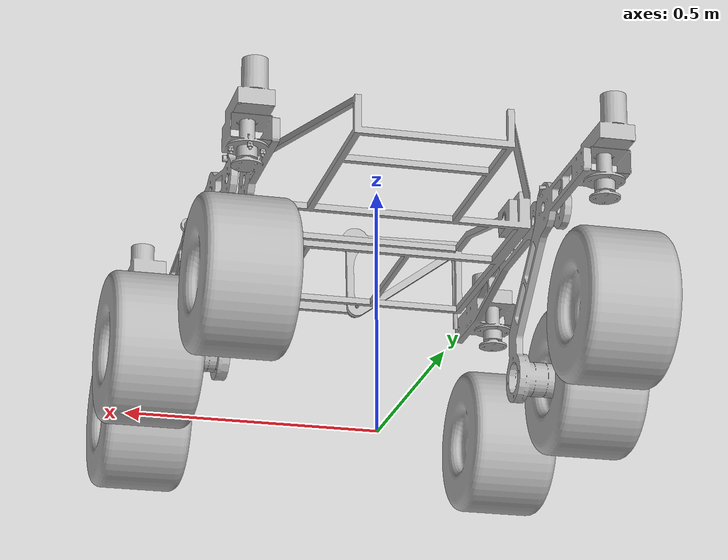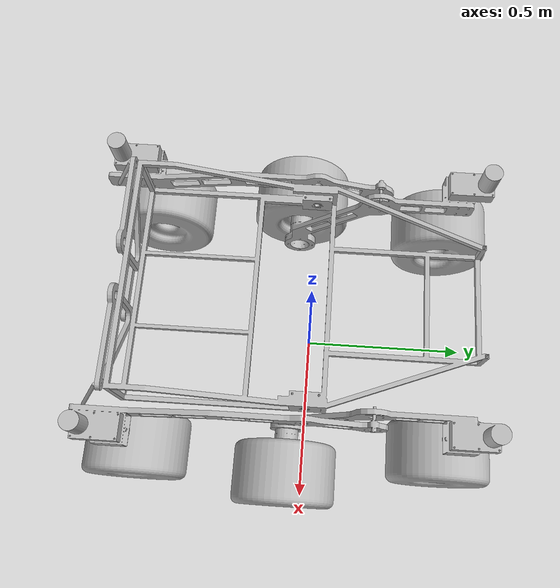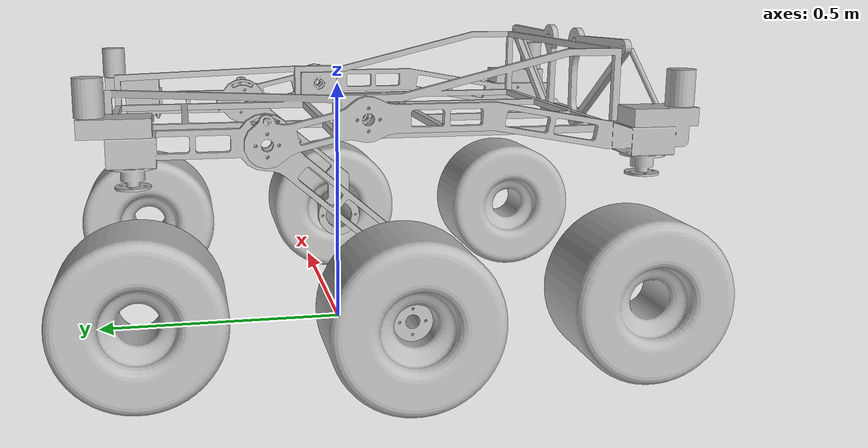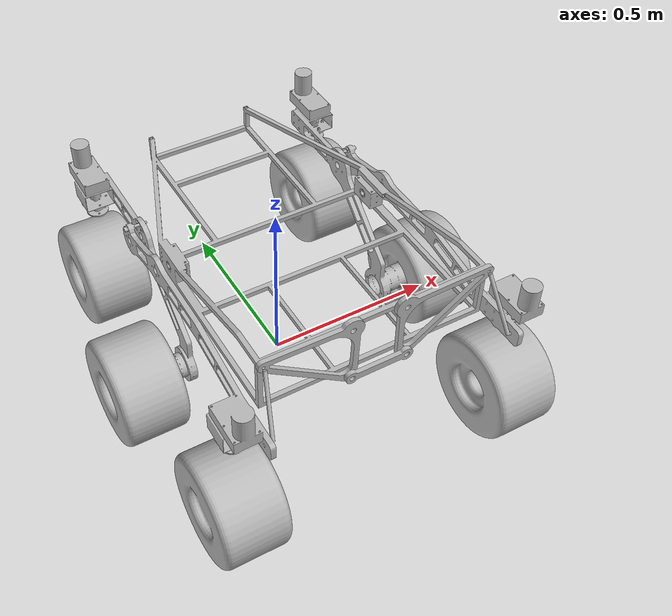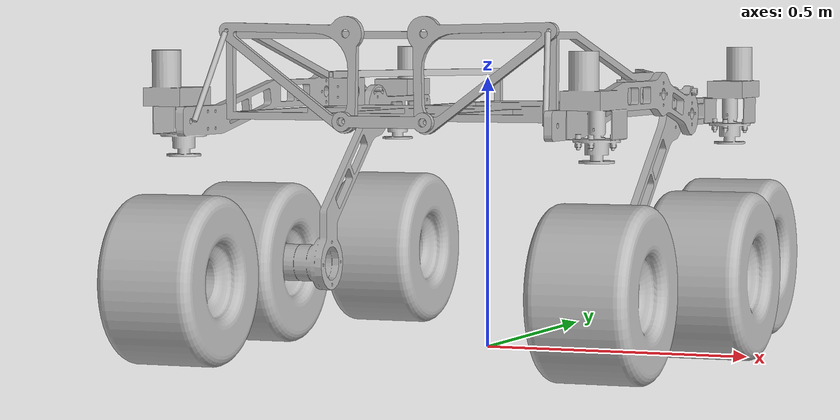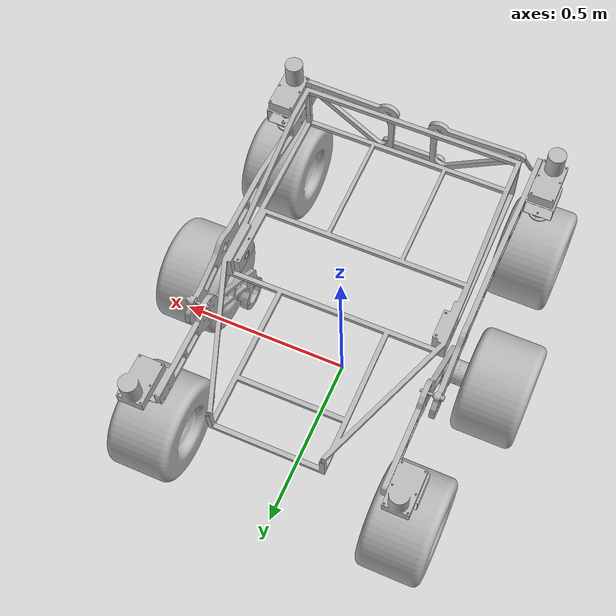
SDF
<?xml version='1.0'?>
<sdf version='1.4'>
<model name="MSI Rover">
  <static>0</static>

<!---------------------------      Chassis Assembly Begins       --------------------------->

  <link name='Chassis'>
    <self_collide>0</self_collide>
    <pose>0.0000 0.0000 0.4720 0.0000 0.0000 0.0000</pose>
    <collision name='Chassis_Collision'>
      <pose>0.0000 -0.0120 0.0380 0.0000 0.0000 0.0000</pose>
      <geometry>
        <box>
          <size>0.6100 0.9300 0.1527</size>
        </box>
      </geometry>
<!------------ TODO ------------>
    </collision>
    <visual name='Chassis_Visual'>
      <geometry>
        <mesh>
          <scale>0.0010 0.0010 0.0010</scale>
          <uri>model://msi_rover/meshes/Chassis.STL</uri>
        </mesh>
      </geometry>
<!------------ TODO ------------>
    </visual>
    <inertial>
      <mass>7.259</mass>                                       <!-- Volume = 0.000902 m^3 -->
      <pose>0.0000 -0.0560 0.0013 0.0000 0.0000 0.0000</pose>
      <inertia>
        <ixx> 0.54570278912</ixx>
        <ixy>-0.00003168874</ixy>
        <ixz>-0.00000141851</ixz>
        <iyy> 0.55866375000</iyy>
        <iyz> 0.02659627264</iyz>
        <izz> 1.07370025000</izz>
      </inertia>
    </inertial>
    <sensor name='laser' type='ray'>
      <pose>0 0 -0.3 0 -0 0</pose>
      <ray>
        <scan>
          <horizontal>
            <samples>72</samples>
            <resolution>1</resolution>
            <min_angle>-3.14159265359</min_angle>
            <max_angle>3.14159265359</max_angle>
          </horizontal>
        </scan>
        <range>
          <min>0.8</min>
          <max>10</max>
          <resolution>0.01</resolution>
        </range>
      </ray>
      <plugin name='laser' filename='libRayPlugin.so'/>
      <always_on>1</always_on>
      <update_rate>30</update_rate>
      <visualize>0</visualize>
    </sensor>
  </link>

<!---------------------------       Chassis Assembly Ends        --------------------------->
<!--------------------------- Left Rocker-Bogie Assembly Begins  --------------------------->

  <link name='Left_Rocker'>
    <self_collide>0</self_collide>
    <pose>-0.3270 0.0000 0.4720 0.0000 0.0000 0.0000</pose>
<!------------ TODO ------------>
    <visual name='Left_Rocker_Visual'>
      <geometry>
        <mesh>
          <scale>0.0010 0.0010 0.0010</scale>
          <uri>model://msi_rover/meshes/Rocker_L.STL</uri>
        </mesh>
      </geometry>
<!------------ TODO ------------>
    </visual>
    <inertial>
      <mass>7.704</mass>                                       <!-- Volume = 0.000957 m^3 -->
      <pose>-0.0315 -0.3536 -0.0096 0.0000 0.0000 0.0000</pose>
      <inertia>
        <ixx> 0.60764512256</ixx>
        <ixy>-0.03926894848</ixy>
        <ixz> 0.00231192640</ixz>
        <iyy> 0.01925778048</iyy>
        <iyz> 0.01388497024</iyz>
        <izz> 0.60239790080</izz>
      </inertia>
    </inertial>
  </link>

  <link name='Left_Bogie'>
    <self_collide>0</self_collide>
    <pose>-0.2940 0.1750 0.4320 0.0000 0.0000 0.0000</pose>
<!------------ TODO ------------>
    <visual name='Left_Bogie_Visual'>
      <geometry>
        <mesh>
          <scale>0.0010 0.0010 0.0010</scale>
          <uri>model://msi_rover/meshes/Bogie_L.STL</uri>
        </mesh>
      </geometry>
<!------------ TODO ------------>
    </visual>
    <inertial>
      <mass>8.493</mass>                                       <!-- Volume = 0.001055 m^3 -->
      <pose>-0.0418 0.0698 -0.0580 0.0000 0.0000 0.0000</pose>
      <inertia>
        <ixx> 0.65631109120</ixx>
        <ixy> 0.00444596320</ixy>
        <ixz>-0.00654497920</ixz>
        <iyy> 0.20716726272</iyy>
        <iyz>-0.27300364288</iyz>
        <izz> 0.48130539520</izz>
      </inertia>
    </inertial>
  </link>

  <link name='Left_Rear_Steering'>
    <self_collide>0</self_collide>
    <pose>-0.3810 -0.4900 0.36800 0.0000 0.0000 0.0000</pose>
<!------------ TODO ------------>
    <inertial>
      <mass>3.34075</mass>                                     <!-- Volume = 0.000415 m^3 -->
      <pose>0.0780 0.0000 -0.1480 0.0000 0.0000 0.0000</pose>
      <inertia>
        <ixx> 0.03486317824</ixx>
        <ixy>-0.00000003196</ixy>
        <ixz> 0.00472688032</ixz>
        <iyy> 0.04927550976</iyy>
        <iyz> 0.00000007500</iyz>
        <izz> 0.02074642688</izz>
      </inertia>
    </inertial>
  </link>

  <link name='Left_Front_Steering'>
    <self_collide>0</self_collide>
    <pose>-0.3480 0.4000 0.3680 0.0000 0.0000 0.0000</pose>
    <inertial>
      <mass>3.34075</mass>                                     <!-- Volume = 0.000415 m^3 -->
      <pose>0.0780 0.0000 -0.1480 0.0000 0.0000 0.0000</pose>
      <inertia>
        <ixx> 0.03486317824</ixx>
        <ixy>-0.00000003196</ixy>
        <ixz> 0.00472688032</ixz>
        <iyy> 0.04927550976</iyy>
        <iyz> 0.00000007500</iyz>
        <izz> 0.02074642688</izz>
      </inertia>
    </inertial>
  </link>

  <link name='Left_Rear_Tyre'>
    <self_collide>0</self_collide>
    <pose>-0.3910 -0.4900 0.1500 0.0000 0.0000 0.0000</pose>
    <collision name='Left_Rear_Tyre_Collision'>
      <pose>0.0000 0.0000 0.0000 0.0000 1.5708 0.0000</pose>
      <geometry>
        <cylinder>
          <radius>0.150</radius>
          <length>0.180</length>
        </cylinder>
      </geometry>
<!------------ TODO ------------>
    </collision>
    <visual name='Left_Rear_Tyre_Visual'>
      <geometry>
        <mesh>
          <scale>0.0010 0.0010 0.0010</scale>
          <uri>model://msi_rover/meshes/Tyre.STL</uri>
        </mesh>
      </geometry>
<!------------ TODO ------------>
    </visual>
    <inertial>
      <mass>1.8000</mass>                                      <!-- Volume = 0.011174 m^3 -->
      <pose>0.0000 0.0000 0.0000 0.0000 0.0000 0.0000</pose>
      <inertia>
        <ixx> 1.36747859968</ixx>
        <ixy> 0.00000017629</ixy>
        <ixz> 0.00000074685</ixz>
        <iyy> 0.95944794112</iyy>
        <iyz> 0.00000067468</iyz>
        <izz> 0.95944794112</izz>
      </inertia>
    </inertial>
  </link>

  <link name='Left_Middle_Tyre'>
    <self_collide>0</self_collide>
    <pose>-0.4480 -0.0500 0.1500 0.0000 0.0000 0.0000</pose>
    <collision name='Left_Middle_Tyre_Collision'>
      <pose>0.0000 0.0000 0.0000 0.0000 1.5708 0.0000</pose>
      <geometry>
        <cylinder>
          <radius>0.150</radius>
          <length>0.180</length>
        </cylinder>
      </geometry>
<!------------ TODO ------------>
    </collision>
    <visual name='Left_Middle_Tyre_Visual'>
      <geometry>
        <mesh>
          <scale>0.0010 0.0010 0.0010</scale>
          <uri>model://msi_rover/meshes/Tyre.STL</uri>
        </mesh>
      </geometry>
<!------------ TODO ------------>
    </visual>
    <inertial>
      <mass>1.8000</mass>                                      <!-- Volume = 0.011174 m^3 -->
      <pose>0.0000 0.0000 0.0000 0.0000 0.0000 0.0000</pose>
      <inertia>
        <ixx> 1.36747859968</ixx>
        <ixy> 0.00000017629</ixy>
        <ixz> 0.00000074685</ixz>
        <iyy> 0.95944794112</iyy>
        <iyz> 0.00000067468</iyz>
        <izz> 0.95944794112</izz>
      </inertia>
    </inertial>
  </link>

  <link name='Left_Front_Tyre'>
    <self_collide>0</self_collide>
    <pose>-0.3580 0.4000 0.1500 0.0000 0.0000 0.0000</pose>
    <collision name='Left_Front_Tyre_Collision'>
      <pose>0.0000 0.0000 0.0000 0.0000 1.5708 0.0000</pose>
      <geometry>
        <cylinder>
          <radius>0.150</radius>
          <length>0.180</length>
        </cylinder>
      </geometry>
<!------------ TODO ------------>
    </collision>
    <visual name='Left_Front_Tyre_Visual'>
      <geometry>
        <mesh>
          <scale>0.0010 0.0010 0.0010</scale>
          <uri>model://msi_rover/meshes/Tyre.STL</uri>
        </mesh>
      </geometry>
<!------------ TODO ------------>
    </visual>
    <inertial>
      <mass>1.8000</mass>                                      <!-- Volume = 0.011174 m^3 -->
      <pose>0.0000 0.0000 0.0000 0.0000 0.0000 0.0000</pose>
      <inertia>
        <ixx> 1.36747859968</ixx>
        <ixy> 0.00000017629</ixy>
        <ixz> 0.00000074685</ixz>
        <iyy> 0.95944794112</iyy>
        <iyz> 0.00000067468</iyz>
        <izz> 0.95944794112</izz>
      </inertia>
    </inertial>
  </link>

<!---------------------------         Joints Subsection          --------------------------->

  <joint type="revolute" name="Left_Rocker_Joint">
    <pose>0.0000 0.0000 0.0000 0.0000 0.0000 0.0000</pose>
    <child>Left_Rocker</child>
    <parent>Chassis</parent>
    <axis>
      <xyz>1 0 0</xyz>
<!------------ TODO ------------>
    </axis>
<!------------ TODO ------------>
  </joint>

  <joint type="revolute" name="Left_Bogie_Joint">
    <pose>0.0000 0.0000 0.0000 0.0000 0.0000 0.0000</pose>
    <child>Left_Bogie</child>
    <parent>Left_Rocker</parent>
    <axis>
      <xyz>1 0 0</xyz>
      <limit>
        <lower>-0.7</lower>
        <upper>0.7</upper>
      </limit>
<!------------ TODO ------------>
    </axis>
<!------------ TODO ------------>
  </joint>

  <joint type="revolute" name="Left_Rear_Steering_Joint">
    <pose>0.0000 0.0000 0.0000 0.0000 0.0000 0.0000</pose>
    <child>Left_Rear_Steering</child>
    <parent>Left_Rocker</parent>
    <axis>
      <xyz>0 0 -1</xyz>
<!------------ TODO ------------>
      <limit>
        <lower>0</lower>
        <upper>0</upper>
      </limit>
<!------------ TODO ------------>
    </axis>
<!------------ TODO ------------>
  </joint>

  <joint type="revolute" name="Left_Front_Steering_Joint">
    <pose>0.0000 0.0000 0.0000 0.0000 0.0000 0.0000</pose>
    <child>Left_Front_Steering</child>
    <parent>Left_Bogie</parent>
    <axis>
      <xyz>0 0 -1</xyz>
<!------------ TODO ------------>
      <limit>
        <lower>0</lower>
        <upper>0</upper>
      </limit>
<!------------ TODO ------------>
    </axis>
<!------------ TODO ------------>
  </joint>

  <joint type="revolute" name="Left_Rear_Tyre_Joint">
    <pose>0.0000 0.0000 0.0000 0.0000 0.0000 0.0000</pose>
    <child>Left_Rear_Tyre</child>
    <parent>Left_Rear_Steering</parent>
    <axis>
      <xyz>1 0 0</xyz>
<!------------ TODO ------------>
    </axis>
<!------------ TODO ------------>
  </joint>

  <joint type="revolute" name="Left_Middle_Tyre_Joint">
    <pose>0.0000 0.0000 0.0000 0.0000 0.0000 0.0000</pose>
    <child>Left_Middle_Tyre</child>
    <parent>Left_Bogie</parent>
    <axis>
      <xyz>1 0 0</xyz>
<!------------ TODO ------------>
    </axis>
<!------------ TODO ------------>
  </joint>

  <joint type="revolute" name="Left_Front_Tyre_Joint">
    <pose>0.0000 0.0000 0.0000 0.0000 0.0000 0.0000</pose>
    <child>Left_Front_Tyre</child>
    <parent>Left_Front_Steering</parent>
    <axis>
      <xyz>1 0 0</xyz>
<!------------ TODO ------------>
    </axis>
<!------------ TODO ------------>
  </joint>

<!---------------------------  Left Rocker-Bogie Assembly Ends   --------------------------->
<!--------------------------- Right Rocker-Bogie Assembly Begins --------------------------->

  <link name='Right_Rocker'>
    <self_collide>0</self_collide>
    <pose>0.3270 0.0000 0.4720 0.0000 0.0000 0.0000</pose>
<!------------ TODO ------------>
    <visual name='Right_Rocker_Visual'>
      <geometry>
        <mesh>
          <scale>0.0010 0.0010 0.0010</scale>
          <uri>model://msi_rover/meshes/Rocker_R.STL</uri>
        </mesh>
      </geometry>
<!------------ TODO ------------>
    </visual>
    <inertial>
      <mass>7.704</mass>                                       <!-- Volume = 0.000957 m^3 -->
      <pose>0.0315 -0.3536 -0.0096 0.0000 0.0000 0.0000</pose>
      <inertia>
        <ixx> 0.60764512256</ixx>
        <ixy> 0.03926894848</ixy>
        <ixz>-0.00231192640</ixz>
        <iyy> 0.01925778048</iyy>
        <iyz> 0.01388497024</iyz>
        <izz> 0.60239790080</izz>
      </inertia>
    </inertial>
  </link>

  <link name='Right_Bogie'>
    <self_collide>0</self_collide>
    <pose>0.2940 0.1750 0.4320 0.0000 0.0000 0.0000</pose>
<!------------ TODO ------------>
    <visual name='Right_Bogie_Visual'>
      <geometry>
        <mesh>
          <scale>0.0010 0.0010 0.0010</scale>
          <uri>model://msi_rover/meshes/Bogie_R.STL</uri>
        </mesh>
      </geometry>
<!------------ TODO ------------>
    </visual>
    <inertial>
      <mass>8.493</mass>                                       <!-- Volume = 0.001055 m^3 -->
      <pose>0.0418 0.0698 -0.0580 0.0000 0.0000 0.0000</pose>
      <inertia>
        <ixx> 0.65631109120</ixx>
        <ixy>-0.00444596320</ixy>
        <ixz> 0.00654497920</ixz>
        <iyy> 0.20716726272</iyy>
        <iyz>-0.27300364288</iyz>
        <izz> 0.48130539520</izz>
      </inertia>
    </inertial>
  </link>

  <link name='Right_Rear_Steering'>
    <self_collide>0</self_collide>
    <pose>0.3810 -0.4900 0.3680 0.0000 0.0000 0.0000</pose>
    <inertial>
      <mass>3.34075</mass>                                     <!-- Volume = 0.000415 m^3 -->
      <pose>-0.0780 0.0000 -0.1480 0.0000 0.0000 0.0000</pose>
      <inertia>
        <ixx> 0.03486317824</ixx>
        <ixy>-0.00000003196</ixy>
        <ixz>-0.00472688032</ixz>
        <iyy> 0.04927550976</iyy>
        <iyz>-0.00000007500</iyz>
        <izz> 0.02074642688</izz>
      </inertia>
    </inertial>
  </link>

  <link name='Right_Front_Steering'>
    <self_collide>0</self_collide>
    <pose>0.3480 0.4000 0.3680 0.0000 0.0000 0.0000</pose>
<!------------ TODO ------------>
<!------------ TODO ------------>
    <inertial>
      <mass>3.34075</mass>                                     <!-- Volume = 0.000415 m^3 -->
      <pose>-0.0780 0.0000 -0.1480 0.0000 0.0000 0.0000</pose>
      <inertia>
        <ixx> 0.03486317824</ixx>
        <ixy>-0.00000003196</ixy>
        <ixz>-0.00472688032</ixz>
        <iyy> 0.04927550976</iyy>
        <iyz>-0.00000007500</iyz>
        <izz> 0.02074642688</izz>
      </inertia>
    </inertial>
  </link>

  <link name='Right_Rear_Tyre'>
    <self_collide>0</self_collide>
    <pose>0.3910 -0.4900 0.1500 0.0000 0.0000 0.0000</pose>
    <collision name='Right_Rear_Tyre_Collision'>
      <pose>0.0000 0.0000 0.0000 0.0000 1.5708 0.0000</pose>
      <geometry>
        <cylinder>
          <radius>0.150</radius>
          <length>0.180</length>
        </cylinder>
      </geometry>
<!------------ TODO ------------>
    </collision>
    <visual name='Right_Rear_Tyre_Visual'>
      <geometry>
        <mesh>
          <scale>0.0010 0.0010 0.0010</scale>
          <uri>model://msi_rover/meshes/Tyre.STL</uri>
        </mesh>
      </geometry>
<!------------ TODO ------------>
    </visual>
    <inertial>
      <mass>1.8000</mass>                                      <!-- Volume = 0.011174 m^3 -->
      <pose>0.0000 0.0000 0.0000 0.0000 0.0000 0.0000</pose>
      <inertia>
        <ixx> 1.36747859968</ixx>
        <ixy> 0.00000017629</ixy>
        <ixz> 0.00000074685</ixz>
        <iyy> 0.95944794112</iyy>
        <iyz> 0.00000067468</iyz>
        <izz> 0.95944794112</izz>
      </inertia>
    </inertial>
  </link>

  <link name='Right_Middle_Tyre'>
    <self_collide>0</self_collide>
    <pose>0.4480 -0.0500 0.1500 0.0000 0.0000 0.0000</pose>
    <collision name='Right_Middle_Tyre_Collision'>
      <pose>0.0000 0.0000 0.0000 0.0000 1.5708 0.0000</pose>
      <geometry>
        <cylinder>
          <radius>0.150</radius>
          <length>0.180</length>
        </cylinder>
      </geometry>
<!------------ TODO ------------>
    </collision>
    <visual name='Right_Middle_Tyre_Visual'>
      <geometry>
        <mesh>
          <scale>0.0010 0.0010 0.0010</scale>
          <uri>model://msi_rover/meshes/Tyre.STL</uri>
        </mesh>
      </geometry>
<!------------ TODO ------------>
    </visual>
    <inertial>
      <mass>1.8000</mass>                                      <!-- Volume = 0.011174 m^3 -->
      <pose>0.0000 0.0000 0.0000 0.0000 0.0000 0.0000</pose>
      <inertia>
        <ixx> 1.36747859968</ixx>
        <ixy> 0.00000017629</ixy>
        <ixz> 0.00000074685</ixz>
        <iyy> 0.95944794112</iyy>
        <iyz> 0.00000067468</iyz>
        <izz> 0.95944794112</izz>
      </inertia>
    </inertial>
  </link>

  <link name='Right_Front_Tyre'>
    <self_collide>0</self_collide>
    <pose>0.3580 0.4000 0.1500 0.0000 0.0000 0.0000</pose>
    <collision name='Right_Front_Tyre_Collision'>
      <pose>0.0000 0.0000 0.0000 0.0000 1.5708 0.0000</pose>
      <geometry>
        <cylinder>
          <radius>0.150</radius>
          <length>0.180</length>
        </cylinder>
      </geometry>
<!------------ TODO ------------>
    </collision>
    <visual name='Right_Front_Tyre_Visual'>
      <geometry>
        <mesh>
          <scale>0.0010 0.0010 0.0010</scale>
          <uri>model://msi_rover/meshes/Tyre.STL</uri>
        </mesh>
      </geometry>
<!------------ TODO ------------>
    </visual>
    <inertial>
      <mass>1.8000</mass>                                      <!-- Volume = 0.011174 m^3 -->
      <pose>0.0000 0.0000 0.0000 0.0000 0.0000 0.0000</pose>
      <inertia>
        <ixx> 1.36747859968</ixx>
        <ixy> 0.00000017629</ixy>
        <ixz> 0.00000074685</ixz>
        <iyy> 0.95944794112</iyy>
        <iyz> 0.00000067468</iyz>
        <izz> 0.95944794112</izz>
      </inertia>
    </inertial>
  </link>

<!---------------------------         Joints Subsection          --------------------------->

  <joint type="revolute" name="Right_Rocker_Joint">
    <pose>0.0000 0.0000 0.0000 0.0000 0.0000 0.0000</pose>
    <child>Right_Rocker</child>
    <parent>Chassis</parent>
    <axis>
      <xyz>1 0 0</xyz>
<!------------ TODO ------------>
    </axis>
<!------------ TODO ------------>
  </joint>

  <joint type="revolute" name="Right_Bogie_Joint">
    <pose>0.0000 0.0000 0.0000 0.0000 0.0000 0.0000</pose>
    <child>Right_Bogie</child>
    <parent>Right_Rocker</parent>
    <axis>
      <xyz>1 0 0</xyz>
      <limit>
        <lower>-0.7</lower>
        <upper>0.7</upper>
      </limit>
<!------------ TODO ------------>
    </axis>
<!------------ TODO ------------>
  </joint>

  <joint type="revolute" name="Right_Rear_Steering_Joint">
    <pose>0.0000 0.0000 0.0000 0.0000 0.0000 0.0000</pose>
    <child>Right_Rear_Steering</child>
    <parent>Right_Rocker</parent>
    <axis>
      <xyz>0 0 -1</xyz>
<!------------ TODO ------------>
      <limit>
        <lower>0</lower>
        <upper>0</upper>
      </limit>
<!------------ TODO ------------>
    </axis>
<!------------ TODO ------------>
  </joint>

  <joint type="revolute" name="Right_Front_Steering_Joint">
    <pose>0.0000 0.0000 0.0000 0.0000 0.0000 0.0000</pose>
    <child>Right_Front_Steering</child>
    <parent>Right_Bogie</parent>
    <axis>
      <xyz>0 0 -1</xyz>
<!------------ TODO ------------>
      <limit>
        <lower>0</lower>
        <upper>0</upper>
      </limit>
<!------------ TODO ------------>
    </axis>
<!------------ TODO ------------>
  </joint>

  <joint type="revolute" name="Right_Rear_Tyre_Joint">
    <pose>0.0000 0.0000 0.0000 0.0000 0.0000 0.0000</pose>
    <child>Right_Rear_Tyre</child>
    <parent>Right_Rear_Steering</parent>
    <axis>
      <xyz>1 0 0</xyz>
<!------------ TODO ------------>
    </axis>
<!------------ TODO ------------>
  </joint>

  <joint type="revolute" name="Right_Middle_Tyre_Joint">
    <pose>0.0000 0.0000 0.0000 0.0000 0.0000 0.0000</pose>
    <child>Right_Middle_Tyre</child>
    <parent>Right_Bogie</parent>
    <axis>
      <xyz>1 0 0</xyz>
<!------------ TODO ------------>
    </axis>
<!------------ TODO ------------>
  </joint>

  <joint type="revolute" name="Right_Front_Tyre_Joint">
    <pose>0.0000 0.0000 0.0000 0.0000 0.0000 0.0000</pose>
    <child>Right_Front_Tyre</child>
    <parent>Right_Front_Steering</parent>
    <axis>
      <xyz>1 0 0</xyz>
<!------------ TODO ------------>
    </axis>
<!------------ TODO ------------>
  </joint>

<!---------------------------  Right Rocker-Bogie Assembly Ends  --------------------------->
<!---------------------------  Triangle Support Assembly Begins  --------------------------->
<!------------------------  TODO: REPAIR AND COMPLETE THIS ASSEMBLY ------------------------>

  <link name='Left_Triangle'>
    <self_collide>0</self_collide>
    <pose>-0.0720 -0.4800 0.5820 0.0000 0.0000 0.0000</pose>
    <collision name='Left_Triangle_Collision'>
      <geometry>
        <mesh>
          <scale>0.0010 0.0010 0.0010</scale>
          <uri>model://msi_rover/meshes/Triangle_L.STL</uri>
        </mesh>
      </geometry>
<!------------ TODO ------------>
    </collision>
    <visual name='Left_Triangle_Visual'>
      <geometry>
        <mesh>
          <scale>0.0010 0.0010 0.0010</scale>
          <uri>model://msi_rover/meshes/Triangle_L.STL</uri>
        </mesh>
      </geometry>
<!------------ TODO ------------>
    </visual>
    <inertial>
      <mass>1.183</mass>                                       <!-- Volume = 0.000147 m^3 -->
      <pose>-0.0732 -0.0060 -0.0464 0.0000 0.0000 0.0000</pose>
      <inertia>
        <ixx> 0.00518080064</ixx>
        <ixy> 0.00000192063</ixy>
        <ixz> 0.00239985552</ixz>
        <iyy> 0.01473344640</iyy>
        <iyz> 0.00000121663</iyz>
        <izz> 0.00958800384</izz>
      </inertia>
    </inertial>
  </link>

  <link name='Right_Triangle'>
    <self_collide>0</self_collide>
    <pose>0.0720 -0.4800 0.5820 0.0000 0.0000 0.0000</pose>
    <collision name='Right_Triangle_Collision'>
      <geometry>
        <mesh>
          <scale>0.0010 0.0010 0.0010</scale>
          <uri>model://msi_rover/meshes/Triangle_R.STL</uri>
        </mesh>
      </geometry>
<!------------ TODO ------------>
    </collision>
    <visual name='Right_Triangle_Visual'>
      <geometry>
        <mesh>
          <scale>0.0010 0.0010 0.0010</scale>
          <uri>model://msi_rover/meshes/Triangle_R.STL</uri>
        </mesh>
      </geometry>
<!------------ TODO ------------>
    </visual>
    <inertial>
      <mass>1.183</mass>                                       <!-- Volume = 0.000147 m^3 -->
      <pose>0.0732 -0.0060 -0.0464 0.0000 0.0000 0.0000</pose>
      <inertia>
        <ixx> 0.00518080064</ixx>
        <ixy>-0.00000192063</ixy>
        <ixz>-0.00239985552</ixz>
        <iyy> 0.01473344640</iyy>
        <iyz> 0.00000121663</iyz>
        <izz> 0.00958800384</izz>
      </inertia>
    </inertial>
  </link>

  <link name='Triangle_Rod'>
    <self_collide>0</self_collide>
    <pose>0.0000 -0.4930 0.4320 0.0000 0.0000 0.0000</pose>
    <collision name='Triangle_Rod_Collision'>
      <geometry>
        <mesh>
          <scale>0.0010 0.0010 0.0010</scale>
          <uri>model://msi_rover/meshes/Triangle_Rod.STL</uri>
        </mesh>
      </geometry>
<!------------ TODO ------------>
    </collision>
    <visual name='Triangle_Rod_Visual'>
      <geometry>
        <mesh>
          <scale>0.0010 0.0010 0.0010</scale>
          <uri>model://msi_rover/meshes/Triangle_Rod.STL</uri>
        </mesh>
      </geometry>
<!------------ TODO ------------>
    </visual>
    <inertial>
      <mass>1.183</mass>                                       <!-- Volume = 0.000147 m^3 -->
      <pose>0.0000 -0.0062 0.0000 0.0000 0.0000 0.0000</pose>
      <inertia>
        <ixx> 0.00002827173</ixx>
        <ixy>-0.00000000000</ixy>
        <ixz>-0.00000000000</ixz>
        <iyy> 0.00118691072</iyy>
        <iyz>-0.00000000000</iyz>
        <izz> 0.00116901968</izz>
      </inertia>
    </inertial>
  </link>

  <link name='Left_Diff_Support'>
    <self_collide>0</self_collide>
    <pose>-0.3085 -0.5340 0.5080 -0.4500 0.1500 0.0000</pose>
    <collision name='Left_Diff_Support_Collision'>
      <geometry>
        <cylinder>
          <radius>0.0050</radius>
          <length>0.1700</length>
        </cylinder>
      </geometry>
<!------------ TODO ------------>
    </collision>
    <visual name='Left_Diff_Support_Visual'>
      <geometry>
        <cylinder>
          <radius>0.0050</radius>
          <length>0.1700</length>
        </cylinder>
      </geometry>
<!------------ TODO ------------>
    </visual>
    <inertial>
      <mass>0.107</mass>                                  <!-- Volume = 0.00001335176 m^3 -->
      <pose>0.0000 0.0000 0.0000 0.0000 0.0000 0.0000</pose>
      <inertia>
        <ixx>0.00025769166</ixx>
        <ixy>0.00000000000</ixy>
        <ixz>0.00000000000</ixz>
        <iyy>0.00025769166</iyy>
        <iyz>0.00000000000</iyz>
        <izz>0.00000133750</izz>
      </inertia>
    </inertial>
  </link>

  <link name='Right_Diff_Support'>
    <self_collide>0</self_collide>
    <pose>0.3085 -0.5340 0.5080 -0.4500 -0.1500 0.0000</pose>
    <collision name='Right_Diff_Support_Collision'>
      <geometry>
        <cylinder>
          <radius>0.0050</radius>
          <length>0.1700</length>
        </cylinder>
      </geometry>
<!------------ TODO ------------>
    </collision>
    <visual name='Right_Diff_Support_Visual'>
      <geometry>
        <cylinder>
          <radius>0.0050</radius>
          <length>0.1700</length>
        </cylinder>
      </geometry>
<!------------ TODO ------------>
    </visual>
    <inertial>
      <mass>0.107</mass>                                  <!-- Volume = 0.00001335176 m^3 -->
      <pose>0.0000 0.0000 0.0000 0.0000 0.0000 0.0000</pose>
      <inertia>
        <ixx>0.00025769166</ixx>
        <ixy>0.00000000000</ixy>
        <ixz>0.00000000000</ixz>
        <iyy>0.00025769166</iyy>
        <iyz>0.00000000000</iyz>
        <izz>0.00000133750</izz>
      </inertia>
    </inertial>
  </link>

<!---------------------------         Joints Subsection          --------------------------->

  <joint type="revolute" name="Right_Triangle_Rod_Joint">
    <pose>0.0750 0.0000 0.0000 0.0000 0.0000 0.0000</pose>
    <child>Triangle_Rod</child>
    <parent>Right_Triangle</parent>
    <axis>
      <xyz>0 1 0</xyz>
<!------------ TODO ------------>
    </axis>
<!------------ TODO ------------>
  </joint>

  <joint type="revolute" name="Left_Triangle_Rod_Joint">
    <pose>-0.0750 0.0000 0.0000 0.0000 0.0000 0.0000</pose>
    <child>Triangle_Rod</child>
    <parent>Left_Triangle</parent>
    <axis>
      <xyz>0 1 0</xyz>
<!------------ TODO ------------>
    </axis>
<!------------ TODO ------------>
  </joint>

  <joint type="revolute" name="Right_Triangle_Joint">
    <pose>0.0000 0.0000 0.0000 0.0000 0.0000 0.0000</pose>
    <child>Right_Triangle</child>
    <parent>Chassis</parent>
    <axis>
      <xyz>0 1 0</xyz>
<!------------ TODO ------------>
    </axis>
<!------------ TODO ------------>
  </joint>

  <joint type="revolute" name="Left_Triangle_Joint">
    <pose>0.0000 0.0000 0.0000 0.0000 0.0000 0.0000</pose>
    <child>Left_Triangle</child>
    <parent>Chassis</parent>
    <axis>
      <xyz>0 1 0</xyz>
<!------------ TODO ------------>
    </axis>
<!------------ TODO ------------>
  </joint>

  <joint type="revolute2" name="Left_Diff_Support_Triangle_Joint">
    <pose>0.0000 0.0000 0.0880 0.0000 0.0000 0.0000</pose>
    <child>Left_Diff_Support</child>
    <parent>Left_Triangle</parent>
    <axis>
      <xyz>0 1 0</xyz>
<!------------ TODO ------------>
    </axis>
    <axis2>
      <xyz>0 0 1</xyz>
<!------------ TODO ------------>
    </axis2>
<!------------ TODO ------------>
  </joint>

  <joint type="revolute2" name="Left_Diff_Support_Rocker_Joint">
    <pose>0.0000 0.0000 -0.0860 0.0000 0.0000 0.0000</pose>
    <child>Left_Diff_Support</child>
    <parent>Left_Rocker</parent>
    <axis>
      <xyz>1 0 0</xyz>
<!------------ TODO ------------>
    </axis>
    <axis2>
      <xyz>0 0 1</xyz>
<!------------ TODO ------------>
    </axis2>
<!------------ TODO ------------>
  </joint>

  <joint type="revolute2" name="Right_Diff_Support_Triangle_Joint">
    <pose>0.0000 0.0000 0.0880 0.0000 0.0000 0.0000</pose>
    <child>Right_Diff_Support</child>
    <parent>Right_Triangle</parent>
    <axis>
      <xyz>0 1 0</xyz>
<!------------ TODO ------------>
    </axis>
    <axis2>
      <xyz>0 0 1</xyz>
<!------------ TODO ------------>
    </axis2>
<!------------ TODO ------------>
  </joint>

  <joint type="revolute2" name="Right_Diff_Support_Rocker_Joint">
    <pose>0.0000 0.0000 -0.0860 0.0000 0.0000 0.0000</pose>
    <child>Right_Diff_Support</child>
    <parent>Right_Rocker</parent>
    <axis>
      <xyz>1 0 0</xyz>
<!------------ TODO ------------>
    </axis>
    <axis2>
      <xyz>0 0 1</xyz>
<!------------ TODO ------------>
    </axis2>
<!------------ TODO ------------>
  </joint>

<!---------------------------   Triangle Support Assembly Ends   --------------------------->

</model>
</sdf>
